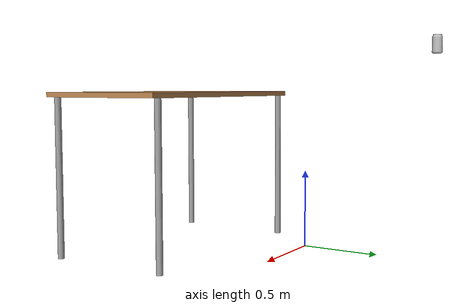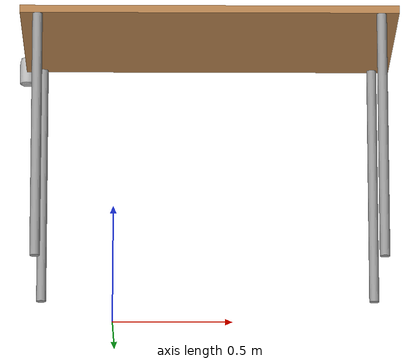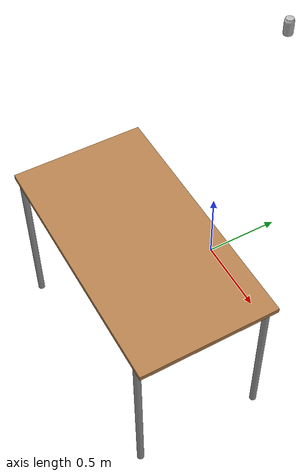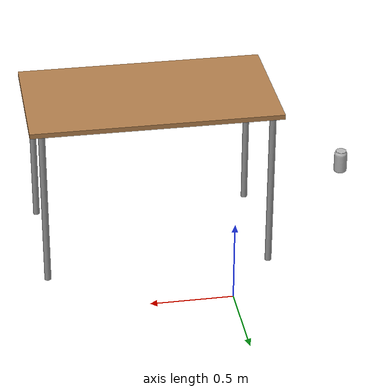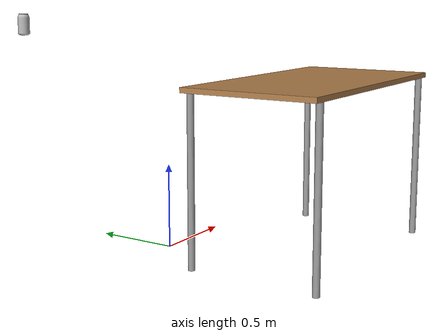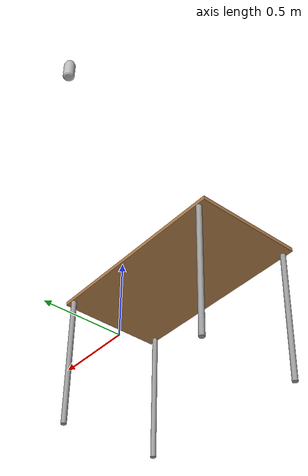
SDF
<?xml version='1.0'?>
<sdf version='1.7'>
  <model name='base'>
    <model name='coke_can'>
      <link name='link'>
        <inertial>
          <!-- keep COM ~6 cm above link origin -->
          <pose>0 0 0.06 0 0 0</pose>
          <mass>0.39</mass>
          <inertia>
            <ixx>0.00055575</ixx>
            <ixy>0</ixy>
            <ixz>0</ixz>
            <iyy>0.00055575</iyy>
            <iyz>0</iyz>
            <izz>0.0001755</izz>
          </inertia>
        </inertial>

        <!-- set collision pose to align with link origin (no negative z offset) -->
        <collision name='collision'>
          <pose>0 0 0 0 0 0</pose>
          <geometry>
            <mesh>
              <uri>model://coke_can/meshes/coke_can.dae</uri>
            </mesh>
          </geometry>
          <surface>
            <friction>
              <ode>
                <mu>1</mu>
                <mu2>1</mu2>
              </ode>
            </friction>
            <contact>
              <ode>
                <kp>1e+07</kp>
                <kd>1</kd>
                <min_depth>0.001</min_depth>
                <max_vel>0.1</max_vel>
              </ode>
            </contact>
          </surface>
        </collision>

        <!-- align visual with link origin as well -->
        <visual name='visual'>
          <pose>0 0 0 0 0 0</pose>
          <geometry>
            <mesh>
              <uri>model://coke_can/meshes/coke_can.dae</uri>
            </mesh>
          </geometry>
        </visual>
      </link>

      <!-- place model so its COM is at z = 1.075 (table top 1.015 + COM offset 0.06) -->
      <pose>-0.393514 0.742998 1.075 0 0 0</pose>
    </model>

    <model name='table'>
      <static>1</static>
      <link name='link'>
        <collision name='surface'>
          <pose>0 0 1 0 0 0</pose>
          <geometry>
            <box>
              <size>1.5 0.8 0.03</size>
            </box>
          </geometry>
          <surface>
            <friction>
              <ode>
                <mu>0.6</mu>
                <mu2>0.6</mu2>
              </ode>
            </friction>
          </surface>
        </collision>
        <visual name='visual1'>
          <pose>0 0 1 0 0 0</pose>
          <geometry>
            <box>
              <size>1.5 0.8 0.03</size>
            </box>
          </geometry>
          <material>
            <script>
              <uri>file://media/materials/scripts/gazebo.material</uri>
              <name>Gazebo/Wood</name>
            </script>
          </material>
        </visual>

        <!-- legs (unchanged) -->
        <collision name='front_left_leg'>
          <pose>0.68 0.38 0.5 0 0 0</pose>
          <geometry>
            <cylinder>
              <radius>0.02</radius>
              <length>1</length>
            </cylinder>
          </geometry>
        </collision>
        <visual name='front_left_leg'>
          <pose>0.68 0.38 0.5 0 0 0</pose>
          <geometry>
            <cylinder>
              <radius>0.02</radius>
              <length>1</length>
            </cylinder>
          </geometry>
          <material>
            <script>
              <uri>file://media/materials/scripts/gazebo.material</uri>
              <name>Gazebo/Grey</name>
            </script>
          </material>
        </visual>

        <collision name='front_right_leg'>
          <pose>0.68 -0.38 0.5 0 0 0</pose>
          <geometry>
            <cylinder>
              <radius>0.02</radius>
              <length>1</length>
            </cylinder>
          </geometry>
        </collision>
        <visual name='front_right_leg'>
          <pose>0.68 -0.38 0.5 0 0 0</pose>
          <geometry>
            <cylinder>
              <radius>0.02</radius>
              <length>1</length>
            </cylinder>
          </geometry>
          <material>
            <script>
              <uri>file://media/materials/scripts/gazebo.material</uri>
              <name>Gazebo/Grey</name>
            </script>
          </material>
        </visual>

        <collision name='back_right_leg'>
          <pose>-0.68 -0.38 0.5 0 0 0</pose>
          <geometry>
            <cylinder>
              <radius>0.02</radius>
              <length>1</length>
            </cylinder>
          </geometry>
        </collision>
        <visual name='back_right_leg'>
          <pose>-0.68 -0.38 0.5 0 0 0</pose>
          <geometry>
            <cylinder>
              <radius>0.02</radius>
              <length>1</length>
            </cylinder>
          </geometry>
          <material>
            <script>
              <uri>file://media/materials/scripts/gazebo.material</uri>
              <name>Gazebo/Grey</name>
            </script>
          </material>
        </visual>

        <collision name='back_left_leg'>
          <pose>-0.68 0.38 0.5 0 0 0</pose>
          <geometry>
            <cylinder>
              <radius>0.02</radius>
              <length>1</length>
            </cylinder>
          </geometry>
        </collision>
        <visual name='back_left_leg'>
          <pose>-0.68 0.38 0.5 0 0 0</pose>
          <geometry>
            <cylinder>
              <radius>0.02</radius>
              <length>1</length>
            </cylinder>
          </geometry>
          <material>
            <script>
              <uri>file://media/materials/scripts/gazebo.material</uri>
              <name>Gazebo/Grey</name>
            </script>
          </material>
        </visual>
      </link>
      <pose>0.393514 -0.743002 0 0 0 0</pose>
    </model>

    <static>0</static>
    <allow_auto_disable>1</allow_auto_disable>
  </model>
</sdf>
